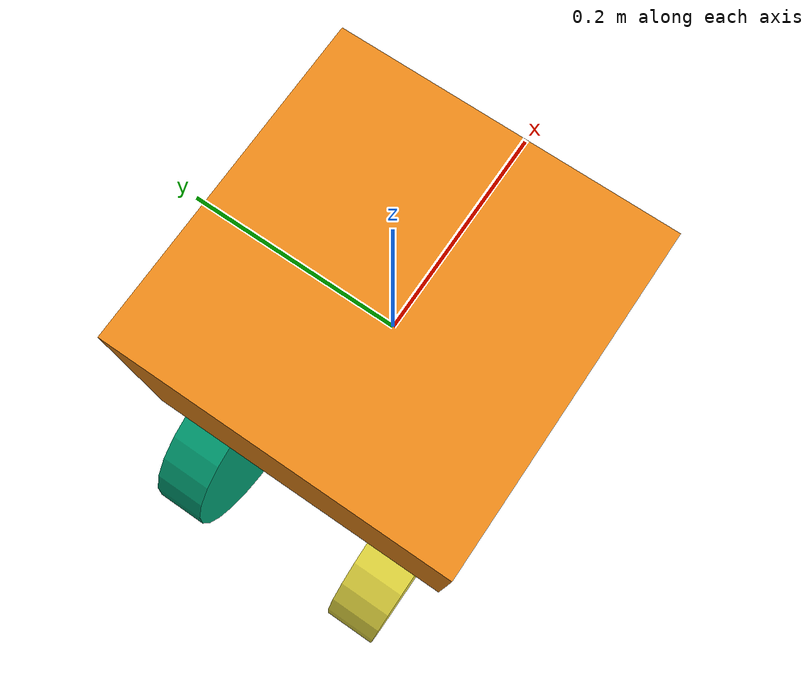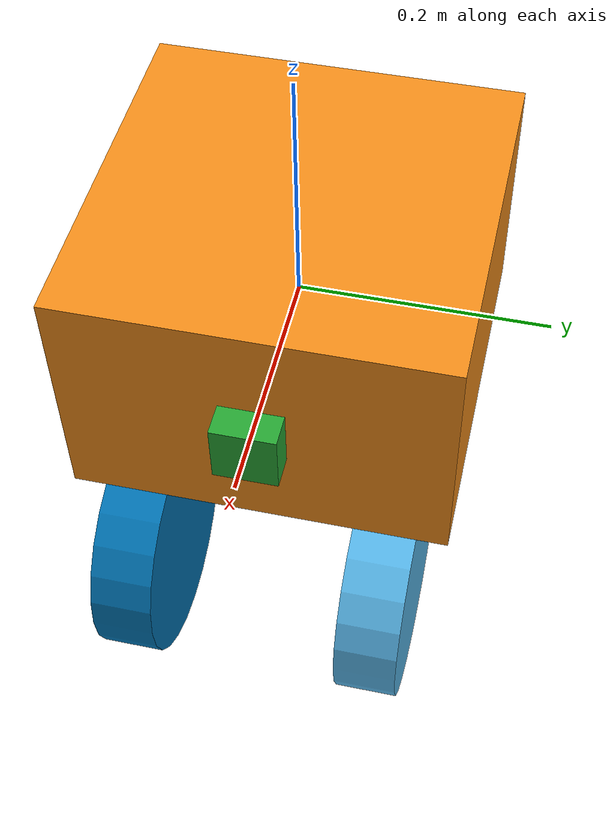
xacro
<?xml version='1.0'?>

<robot name="myrobot" xmlns:xacro="http://www.ros.org/wiki/xacro">

  <xacro:property name="cameraSize" value="0.05"/>
  <xacro:property name="cameraMass" value="0.1"/>

  <xacro:include filename="$(find mybot_description)/urdf/mybot.gazebo" />
  <xacro:include filename="$(find mybot_description)/urdf/materials.xacro" />
  <xacro:include filename="$(find mybot_description)/urdf/macros.xacro" />

  <link name='chassis'>
    <pose>0 0 0 0 0 0</pose>

    <inertial>
      <mass value="10.0"/>
      <origin xyz="0.0 0 0.1" rpy=" 0 0 0"/>
      <inertia
          ixx="0.5" ixy="0" ixz="0"
          iyy="1.0" iyz="0"
          izz="0.1"
      />
    </inertial>

    <collision name='collision'>
      <geometry>
        <box size=".3 .3 .2"/>
      </geometry>
      <!--contact_coefficient mu="0.1"/-->
    </collision>

    <visual name='chassis_visual'>
      <origin xyz="0 0 0" rpy=" 0 0 0"/>
      <geometry>
        <box size=".3 .3 .2"/>
      </geometry>
    </visual>

  </link>

  <link name="left_wheel">
    <!--origin xyz="0.1 0.13 0.1" rpy="0 1.5707 1.5707"/-->
    <collision name="collision">
      <origin xyz="0 0 0" rpy="0 1.5707 1.5707"/>
      <geometry>
        <cylinder radius="0.1" length="0.05"/>
      </geometry>
    </collision>
    <visual name="left_wheel_visual">
      <origin xyz="0 0 0" rpy="0 1.5707 1.5707"/>
      <geometry>
        <cylinder radius="0.1" length="0.05"/>
      </geometry>
    </visual>
    <inertial>
      <origin xyz="0 0 0" rpy="0 1.5707 1.5707"/>
      <mass value="5"/>
      <cylinder_inertia m="5" r="0.1" h="0.05"/>
      <inertia
        ixx="1.0" ixy="0.0" ixz="0.0"
        iyy="1.0" iyz="0.0"
        izz="1.0"/>
    </inertial>
  </link>

  <link name="left_wheel_b">
    <!--origin xyz="0.1 0.13 0.1" rpy="0 1.5707 1.5707"/-->
    <collision name="collision">
      <origin xyz="0 0 0" rpy="0 1.5707 1.5707"/>
      <geometry>
        <cylinder radius="0.1" length="0.05"/>
      </geometry>
    </collision>
    <visual name="left_b_wheel_visual">
      <origin xyz="0 0 0" rpy="0 1.5707 1.5707"/>
      <geometry>
        <cylinder radius="0.1" length="0.05"/>
      </geometry>
    </visual>
    <inertial>
      <origin xyz="0 0 0" rpy="0 1.5707 1.5707"/>
      <mass value="5"/>
      <cylinder_inertia m="5" r="0.1" h="0.05"/>
      <inertia
        ixx="1.0" ixy="0.0" ixz="0.0"
        iyy="1.0" iyz="0.0"
        izz="1.0"/>
    </inertial>
  </link>

  <link name="right_wheel_b">
    <!--origin xyz="0.1 0.13 0.1" rpy="0 1.5707 1.5707"/-->
    <collision name="collision">
      <origin xyz="0 0 0" rpy="0 1.5707 1.5707"/>
      <geometry>
        <cylinder radius="0.1" length="0.05"/>
      </geometry>
    </collision>
    <visual name="right_b_wheel_visual">
      <origin xyz="0 0 0" rpy="0 1.5707 1.5707"/>
      <geometry>
        <cylinder radius="0.1" length="0.05"/>
      </geometry>
    </visual>
    <inertial>
      <origin xyz="0 0 0" rpy="0 1.5707 1.5707"/>
      <mass value="5"/>
      <cylinder_inertia m="5" r="0.1" h="0.05"/>
      <inertia
        ixx="1.0" ixy="0.0" ixz="0.0"
        iyy="1.0" iyz="0.0"
        izz="1.0"/>
    </inertial>
  </link>

  <link name="right_wheel">
    <!--origin xyz="0.1 -0.13 0.1" rpy="0 1.5707 1.5707"/-->
    <collision name="collision">
      <origin xyz="0 0 0" rpy="0 1.5707 1.5707"/>
      <geometry>
        <cylinder radius="0.1" length="0.05"/>
      </geometry>
    </collision>
    <visual name="right_wheel_visual">
      <origin xyz="0 0 0" rpy="0 1.5707 1.5707"/>
      <geometry>
        <cylinder radius="0.1" length="0.05"/>
      </geometry>
    </visual>
    <inertial>
      <origin xyz="0 0 0" rpy="0 1.5707 1.5707"/>
      <mass value="5"/>
      <cylinder_inertia m="5" r="0.1" h="0.05"/>
      <inertia
        ixx="1.0" ixy="0.0" ixz="0.0"
        iyy="1.0" iyz="0.0"
        izz="1.0"/>
    </inertial>
  </link>

  <joint type="continuous" name="left_b_wheel_hinge">
    <origin xyz="-0.12 0.1 -0.199" rpy="0 0 0"/>
    <child link="left_wheel_b"/>
    <parent link="chassis"/>
    <axis xyz="0 1 0" rpy="0 0 0"/>
    <limit effort="100" velocity="100"/>
    <joint_properties damping="0.0" friction="0.0"/>
  </joint>

  <joint type="continuous" name="right_b_wheel_hinge">
    <origin xyz="-0.12 -0.1 -0.199" rpy="0 0 0"/>
    <child link="right_wheel_b"/>
    <parent link="chassis"/>
    <axis xyz="0 1 0" rpy="0 0 0"/>
    <limit effort="100" velocity="100"/>
    <joint_properties damping="0.0" friction="0.0"/>
  </joint>

  <joint type="continuous" name="left_wheel_hinge">
    <origin xyz="0.12 0.1 -0.199" rpy="0 0 0"/>
    <child link="left_wheel"/>
    <parent link="chassis"/>
    <axis xyz="0 1 0" rpy="0 0 0"/>
    <limit effort="100" velocity="100"/>
    <joint_properties damping="0.0" friction="0.0"/>
  </joint>

  <joint type="continuous" name="right_wheel_hinge">
    <origin xyz="0.12 -0.1 -0.199" rpy="0 0 0"/>
    <child link="right_wheel"/>
    <parent link="chassis"/>
    <axis xyz="0 1 0" rpy="0 0 0"/>
    <limit effort="100" velocity="100"/>
    <joint_properties damping="0.0" friction="0.0"/>
  </joint>

  <link name="camera">
    <collision>
      <origin xyz="0 0 0" rpy="0 0 0"/>
      <geometry>
        <box size="${cameraSize} ${cameraSize} ${cameraSize}"/>
      </geometry>
    </collision>

    <visual>
      <origin xyz="0 0 0" rpy="0 0 0"/>
      <geometry>
        <box size="${cameraSize} ${cameraSize} ${cameraSize}"/>
      </geometry>
      <material name="green"/>
    </visual>

    <inertial>
      <mass value="${cameraMass}" />
      <origin xyz="0 0 0" rpy="0 0 0"/>
      <box_inertia m="${cameraMass}" x="${cameraSize}" y="${cameraSize}" z="${cameraSize}" />
      <inertia ixx="1e-6" ixy="0" ixz="0" iyy="1e-6" iyz="0" izz="1e-6" />
    </inertial>
  </link>

  <joint name="camera_joint" type="fixed">
    <axis xyz="0 1 0" />
    <origin xyz=".15 0 0" rpy="0 0 0"/>
    <parent link="chassis"/>
    <child link="camera"/>
  </joint>

  <gazebo>
    <plugin name="gazebo_ros_control" filename="libgazebo_ros_control.so">
      <robotNamespace>/mybot</robotNamespace>
    </plugin>
  </gazebo>

</robot>
